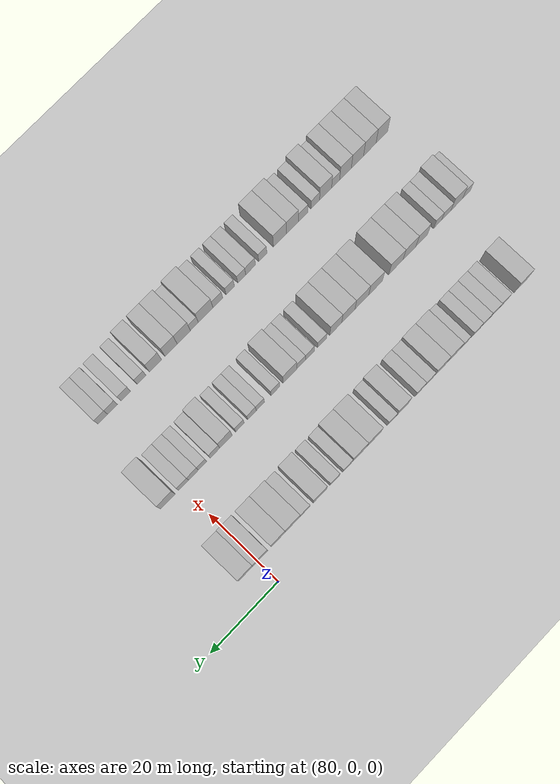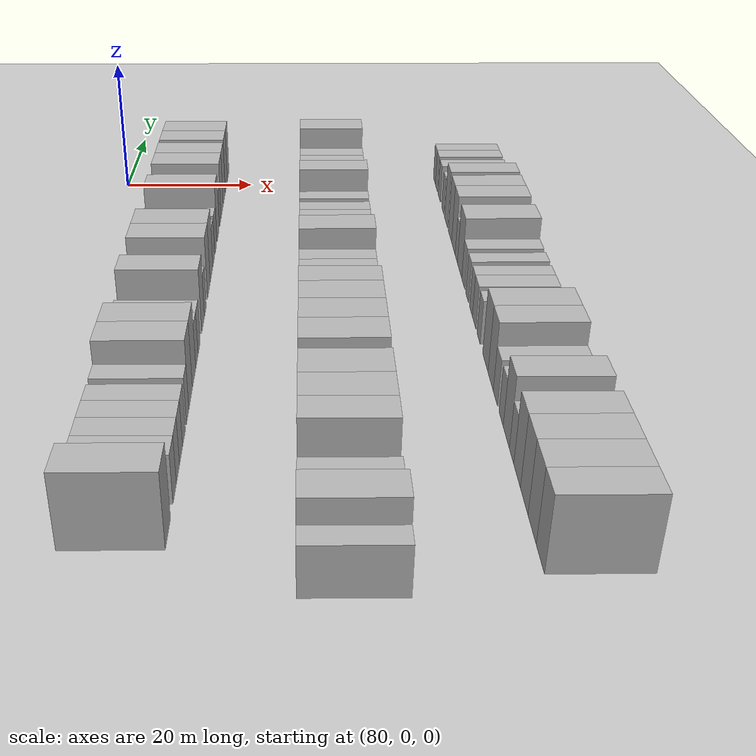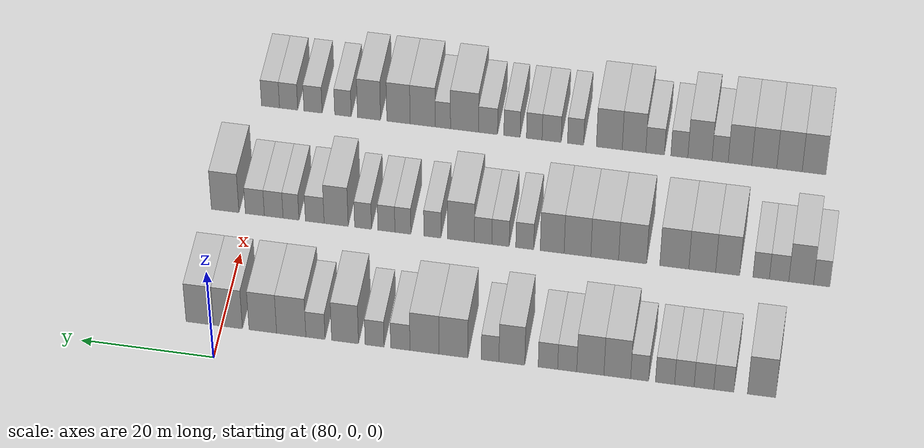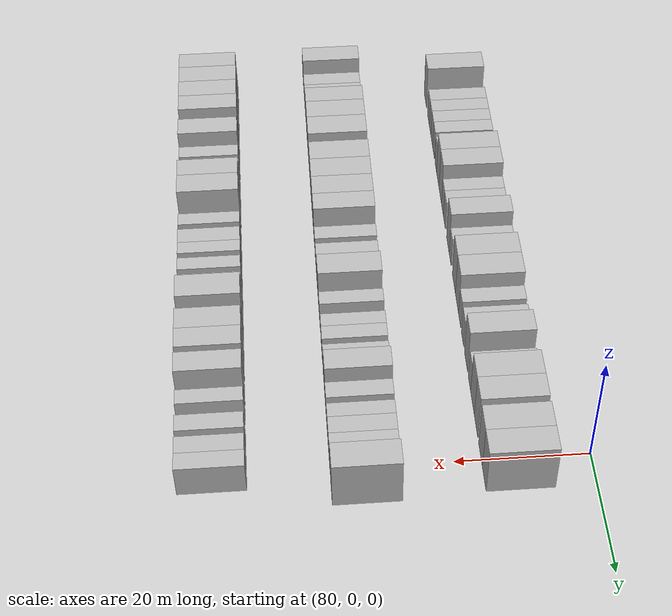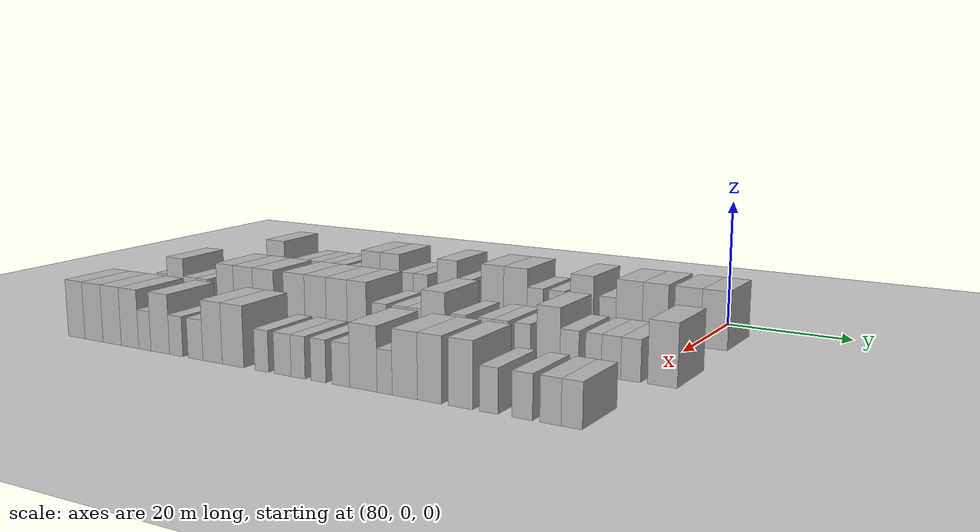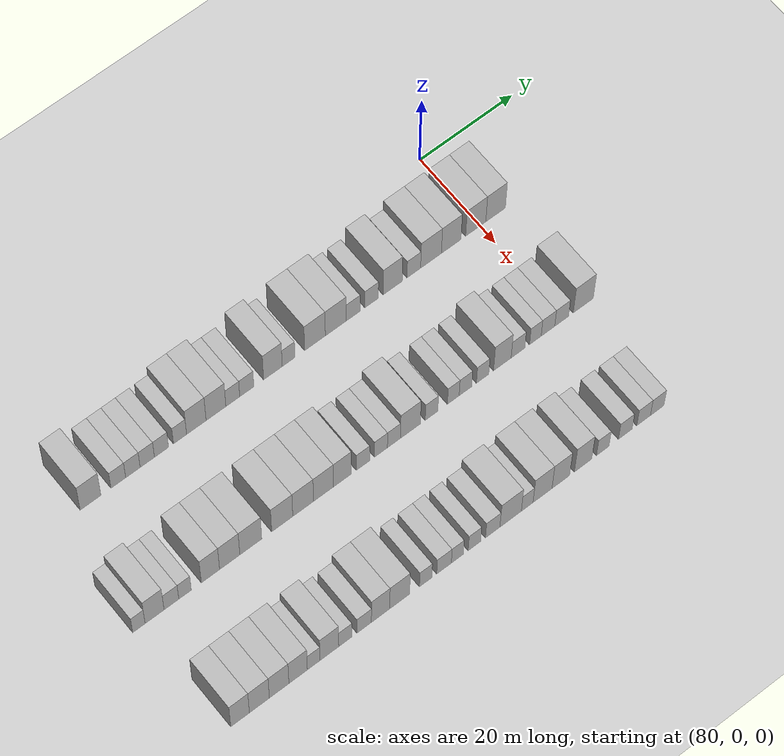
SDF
<sdf version="1.6">
 <world name="default">
  <include>
   <name>ground_plane_2</name>
   <uri>model://HANNAS_ground_plane</uri>
   <pose>100 0 0  0 0 0</pose>
  </include>
  <model name="building_643">
   <static>1</static>
   <pose>91.0000 -80.6594 0 0.000000 0.000000 0.000000</pose>
   <link name="link">
    <pose>0 0 4.50 0 0 0</pose>
    <collision name="collision"><geometry><box><size>10.0000 4.1538 9.0000</size></box></geometry></collision>
    <visual name="visual">
     <cast_shadows>0</cast_shadows>
     <geometry><box><size>10.0000 4.1538 9.0000</size></box></geometry>
     <material>
      <script>
       <uri>model://HANNAS_wall/materials/scripts</uri>
       <uri>model://HANNAS_wall/materials/textures</uri>
       <name>vrc/HANNAS_wall</name>
      </script>
     </material>
    </visual>
   </link>
  </model>
  <model name="building_644">
   <static>1</static>
   <pose>91.0000 -75.1025 0 0.000000 0.000000 0.000000</pose>
   <link name="link">
    <pose>0 0 3.00 0 0 0</pose>
    <collision name="collision"><geometry><box><size>10.0000 2.9601 6.0000</size></box></geometry></collision>
    <visual name="visual">
     <cast_shadows>0</cast_shadows>
     <geometry><box><size>10.0000 2.9601 6.0000</size></box></geometry>
     <material>
      <script>
       <uri>model://HANNAS_wall/materials/scripts</uri>
       <uri>model://HANNAS_wall/materials/textures</uri>
       <name>vrc/HANNAS_wall</name>
      </script>
     </material>
    </visual>
   </link>
  </model>
  <model name="building_645">
   <static>1</static>
   <pose>91.0000 -72.1695 0 0.000000 0.000000 0.000000</pose>
   <link name="link">
    <pose>0 0 3.00 0 0 0</pose>
    <collision name="collision"><geometry><box><size>10.0000 2.9058 6.0000</size></box></geometry></collision>
    <visual name="visual">
     <cast_shadows>0</cast_shadows>
     <geometry><box><size>10.0000 2.9058 6.0000</size></box></geometry>
     <material>
      <script>
       <uri>model://HANNAS_wall/materials/scripts</uri>
       <uri>model://HANNAS_wall/materials/textures</uri>
       <name>vrc/HANNAS_wall</name>
      </script>
     </material>
    </visual>
   </link>
  </model>
  <model name="building_646">
   <static>1</static>
   <pose>91.0000 -69.2761 0 0.000000 0.000000 0.000000</pose>
   <link name="link">
    <pose>0 0 3.00 0 0 0</pose>
    <collision name="collision"><geometry><box><size>10.0000 2.8811 6.0000</size></box></geometry></collision>
    <visual name="visual">
     <cast_shadows>0</cast_shadows>
     <geometry><box><size>10.0000 2.8811 6.0000</size></box></geometry>
     <material>
      <script>
       <uri>model://HANNAS_wall/materials/scripts</uri>
       <uri>model://HANNAS_wall/materials/textures</uri>
       <name>vrc/HANNAS_wall</name>
      </script>
     </material>
    </visual>
   </link>
  </model>
  <model name="building_647">
   <static>1</static>
   <pose>91.0000 -66.4139 0 0.000000 0.000000 0.000000</pose>
   <link name="link">
    <pose>0 0 3.00 0 0 0</pose>
    <collision name="collision"><geometry><box><size>10.0000 2.8433 6.0000</size></box></geometry></collision>
    <visual name="visual">
     <cast_shadows>0</cast_shadows>
     <geometry><box><size>10.0000 2.8433 6.0000</size></box></geometry>
     <material>
      <script>
       <uri>model://HANNAS_wall/materials/scripts</uri>
       <uri>model://HANNAS_wall/materials/textures</uri>
       <name>vrc/HANNAS_wall</name>
      </script>
     </material>
    </visual>
   </link>
  </model>
  <model name="building_648">
   <static>1</static>
   <pose>91.0000 -62.6570 0 0.000000 0.000000 0.000000</pose>
   <link name="link">
    <pose>0 0 3.00 0 0 0</pose>
    <collision name="collision"><geometry><box><size>10.0000 2.6704 6.0000</size></box></geometry></collision>
    <visual name="visual">
     <cast_shadows>0</cast_shadows>
     <geometry><box><size>10.0000 2.6704 6.0000</size></box></geometry>
     <material>
      <script>
       <uri>model://HANNAS_wall/materials/scripts</uri>
       <uri>model://HANNAS_wall/materials/textures</uri>
       <name>vrc/HANNAS_wall</name>
      </script>
     </material>
    </visual>
   </link>
  </model>
  <model name="building_649">
   <static>1</static>
   <pose>91.0000 -59.3383 0 0.000000 0.000000 0.000000</pose>
   <link name="link">
    <pose>0 0 4.50 0 0 0</pose>
    <collision name="collision"><geometry><box><size>10.0000 3.9670 9.0000</size></box></geometry></collision>
    <visual name="visual">
     <cast_shadows>0</cast_shadows>
     <geometry><box><size>10.0000 3.9670 9.0000</size></box></geometry>
     <material>
      <script>
       <uri>model://HANNAS_wall/materials/scripts</uri>
       <uri>model://HANNAS_wall/materials/textures</uri>
       <name>vrc/HANNAS_wall</name>
      </script>
     </material>
    </visual>
   </link>
  </model>
  <model name="building_650">
   <static>1</static>
   <pose>91.0000 -55.3358 0 0.000000 0.000000 0.000000</pose>
   <link name="link">
    <pose>0 0 4.50 0 0 0</pose>
    <collision name="collision"><geometry><box><size>10.0000 4.0381 9.0000</size></box></geometry></collision>
    <visual name="visual">
     <cast_shadows>0</cast_shadows>
     <geometry><box><size>10.0000 4.0381 9.0000</size></box></geometry>
     <material>
      <script>
       <uri>model://HANNAS_wall/materials/scripts</uri>
       <uri>model://HANNAS_wall/materials/textures</uri>
       <name>vrc/HANNAS_wall</name>
      </script>
     </material>
    </visual>
   </link>
  </model>
  <model name="building_651">
   <static>1</static>
   <pose>91.0000 -51.8977 0 0.000000 0.000000 0.000000</pose>
   <link name="link">
    <pose>0 0 3.00 0 0 0</pose>
    <collision name="collision"><geometry><box><size>10.0000 2.8381 6.0000</size></box></geometry></collision>
    <visual name="visual">
     <cast_shadows>0</cast_shadows>
     <geometry><box><size>10.0000 2.8381 6.0000</size></box></geometry>
     <material>
      <script>
       <uri>model://HANNAS_wall/materials/scripts</uri>
       <uri>model://HANNAS_wall/materials/textures</uri>
       <name>vrc/HANNAS_wall</name>
      </script>
     </material>
    </visual>
   </link>
  </model>
  <model name="building_652">
   <static>1</static>
   <pose>91.0000 -49.0293 0 0.000000 0.000000 0.000000</pose>
   <link name="link">
    <pose>0 0 3.00 0 0 0</pose>
    <collision name="collision"><geometry><box><size>10.0000 2.8986 6.0000</size></box></geometry></collision>
    <visual name="visual">
     <cast_shadows>0</cast_shadows>
     <geometry><box><size>10.0000 2.8986 6.0000</size></box></geometry>
     <material>
      <script>
       <uri>model://HANNAS_wall/materials/scripts</uri>
       <uri>model://HANNAS_wall/materials/textures</uri>
       <name>vrc/HANNAS_wall</name>
      </script>
     </material>
    </visual>
   </link>
  </model>
  <model name="building_653">
   <static>1</static>
   <pose>91.0000 -43.6523 0 0.000000 0.000000 0.000000</pose>
   <link name="link">
    <pose>0 0 4.50 0 0 0</pose>
    <collision name="collision"><geometry><box><size>10.0000 3.8554 9.0000</size></box></geometry></collision>
    <visual name="visual">
     <cast_shadows>0</cast_shadows>
     <geometry><box><size>10.0000 3.8554 9.0000</size></box></geometry>
     <material>
      <script>
       <uri>model://HANNAS_wall/materials/scripts</uri>
       <uri>model://HANNAS_wall/materials/textures</uri>
       <name>vrc/HANNAS_wall</name>
      </script>
     </material>
    </visual>
   </link>
  </model>
  <model name="building_654">
   <static>1</static>
   <pose>91.0000 -40.4068 0 0.000000 0.000000 0.000000</pose>
   <link name="link">
    <pose>0 0 3.00 0 0 0</pose>
    <collision name="collision"><geometry><box><size>10.0000 2.6355 6.0000</size></box></geometry></collision>
    <visual name="visual">
     <cast_shadows>0</cast_shadows>
     <geometry><box><size>10.0000 2.6355 6.0000</size></box></geometry>
     <material>
      <script>
       <uri>model://HANNAS_wall/materials/scripts</uri>
       <uri>model://HANNAS_wall/materials/textures</uri>
       <name>vrc/HANNAS_wall</name>
      </script>
     </material>
    </visual>
   </link>
  </model>
  <model name="building_655">
   <static>1</static>
   <pose>91.0000 -34.9305 0 0.000000 0.000000 0.000000</pose>
   <link name="link">
    <pose>0 0 4.50 0 0 0</pose>
    <collision name="collision"><geometry><box><size>10.0000 4.3170 9.0000</size></box></geometry></collision>
    <visual name="visual">
     <cast_shadows>0</cast_shadows>
     <geometry><box><size>10.0000 4.3170 9.0000</size></box></geometry>
     <material>
      <script>
       <uri>model://HANNAS_wall/materials/scripts</uri>
       <uri>model://HANNAS_wall/materials/textures</uri>
       <name>vrc/HANNAS_wall</name>
      </script>
     </material>
    </visual>
   </link>
  </model>
  <model name="building_656">
   <static>1</static>
   <pose>91.0000 -30.5840 0 0.000000 0.000000 0.000000</pose>
   <link name="link">
    <pose>0 0 4.50 0 0 0</pose>
    <collision name="collision"><geometry><box><size>10.0000 4.3761 9.0000</size></box></geometry></collision>
    <visual name="visual">
     <cast_shadows>0</cast_shadows>
     <geometry><box><size>10.0000 4.3761 9.0000</size></box></geometry>
     <material>
      <script>
       <uri>model://HANNAS_wall/materials/scripts</uri>
       <uri>model://HANNAS_wall/materials/textures</uri>
       <name>vrc/HANNAS_wall</name>
      </script>
     </material>
    </visual>
   </link>
  </model>
  <model name="building_657">
   <static>1</static>
   <pose>91.0000 -26.9456 0 0.000000 0.000000 0.000000</pose>
   <link name="link">
    <pose>0 0 3.00 0 0 0</pose>
    <collision name="collision"><geometry><box><size>10.0000 2.9006 6.0000</size></box></geometry></collision>
    <visual name="visual">
     <cast_shadows>0</cast_shadows>
     <geometry><box><size>10.0000 2.9006 6.0000</size></box></geometry>
     <material>
      <script>
       <uri>model://HANNAS_wall/materials/scripts</uri>
       <uri>model://HANNAS_wall/materials/textures</uri>
       <name>vrc/HANNAS_wall</name>
      </script>
     </material>
    </visual>
   </link>
  </model>
  <model name="building_658">
   <static>1</static>
   <pose>91.0000 -23.0763 0 0.000000 0.000000 0.000000</pose>
   <link name="link">
    <pose>0 0 3.00 0 0 0</pose>
    <collision name="collision"><geometry><box><size>10.0000 2.8379 6.0000</size></box></geometry></collision>
    <visual name="visual">
     <cast_shadows>0</cast_shadows>
     <geometry><box><size>10.0000 2.8379 6.0000</size></box></geometry>
     <material>
      <script>
       <uri>model://HANNAS_wall/materials/scripts</uri>
       <uri>model://HANNAS_wall/materials/textures</uri>
       <name>vrc/HANNAS_wall</name>
      </script>
     </material>
    </visual>
   </link>
  </model>
  <model name="building_659">
   <static>1</static>
   <pose>91.0000 -18.6362 0 0.000000 0.000000 0.000000</pose>
   <link name="link">
    <pose>0 0 4.50 0 0 0</pose>
    <collision name="collision"><geometry><box><size>10.0000 4.0423 9.0000</size></box></geometry></collision>
    <visual name="visual">
     <cast_shadows>0</cast_shadows>
     <geometry><box><size>10.0000 4.0423 9.0000</size></box></geometry>
     <material>
      <script>
       <uri>model://HANNAS_wall/materials/scripts</uri>
       <uri>model://HANNAS_wall/materials/textures</uri>
       <name>vrc/HANNAS_wall</name>
      </script>
     </material>
    </visual>
   </link>
  </model>
  <model name="building_660">
   <static>1</static>
   <pose>91.0000 -14.1672 0 0.000000 0.000000 0.000000</pose>
   <link name="link">
    <pose>0 0 3.00 0 0 0</pose>
    <collision name="collision"><geometry><box><size>10.0000 2.8957 6.0000</size></box></geometry></collision>
    <visual name="visual">
     <cast_shadows>0</cast_shadows>
     <geometry><box><size>10.0000 2.8957 6.0000</size></box></geometry>
     <material>
      <script>
       <uri>model://HANNAS_wall/materials/scripts</uri>
       <uri>model://HANNAS_wall/materials/textures</uri>
       <name>vrc/HANNAS_wall</name>
      </script>
     </material>
    </visual>
   </link>
  </model>
  <model name="building_661">
   <static>1</static>
   <pose>91.0000 -10.5054 0 0.000000 0.000000 0.000000</pose>
   <link name="link">
    <pose>0 0 4.50 0 0 0</pose>
    <collision name="collision"><geometry><box><size>10.0000 4.4279 9.0000</size></box></geometry></collision>
    <visual name="visual">
     <cast_shadows>0</cast_shadows>
     <geometry><box><size>10.0000 4.4279 9.0000</size></box></geometry>
     <material>
      <script>
       <uri>model://HANNAS_wall/materials/scripts</uri>
       <uri>model://HANNAS_wall/materials/textures</uri>
       <name>vrc/HANNAS_wall</name>
      </script>
     </material>
    </visual>
   </link>
  </model>
  <model name="building_662">
   <static>1</static>
   <pose>91.0000 -6.2024 0 0.000000 0.000000 0.000000</pose>
   <link name="link">
    <pose>0 0 4.50 0 0 0</pose>
    <collision name="collision"><geometry><box><size>10.0000 4.1783 9.0000</size></box></geometry></collision>
    <visual name="visual">
     <cast_shadows>0</cast_shadows>
     <geometry><box><size>10.0000 4.1783 9.0000</size></box></geometry>
     <material>
      <script>
       <uri>model://HANNAS_wall/materials/scripts</uri>
       <uri>model://HANNAS_wall/materials/textures</uri>
       <name>vrc/HANNAS_wall</name>
      </script>
     </material>
    </visual>
   </link>
  </model>
  <model name="building_663">
   <static>1</static>
   <pose>91.0000 -0.9442 0 0.000000 0.000000 0.000000</pose>
   <link name="link">
    <pose>0 0 4.50 0 0 0</pose>
    <collision name="collision"><geometry><box><size>10.0000 4.3382 9.0000</size></box></geometry></collision>
    <visual name="visual">
     <cast_shadows>0</cast_shadows>
     <geometry><box><size>10.0000 4.3382 9.0000</size></box></geometry>
     <material>
      <script>
       <uri>model://HANNAS_wall/materials/scripts</uri>
       <uri>model://HANNAS_wall/materials/textures</uri>
       <name>vrc/HANNAS_wall</name>
      </script>
     </material>
    </visual>
   </link>
  </model>
  <model name="building_664">
   <static>1</static>
   <pose>91.0000 3.3282 0 0.000000 0.000000 0.000000</pose>
   <link name="link">
    <pose>0 0 4.50 0 0 0</pose>
    <collision name="collision"><geometry><box><size>10.0000 4.2066 9.0000</size></box></geometry></collision>
    <visual name="visual">
     <cast_shadows>0</cast_shadows>
     <geometry><box><size>10.0000 4.2066 9.0000</size></box></geometry>
     <material>
      <script>
       <uri>model://HANNAS_wall/materials/scripts</uri>
       <uri>model://HANNAS_wall/materials/textures</uri>
       <name>vrc/HANNAS_wall</name>
      </script>
     </material>
    </visual>
   </link>
  </model>
  <model name="building_828">
   <static>1</static>
   <pose>113.0000 -87.4031 0 0.000000 0.000000 0.000000</pose>
   <link name="link">
    <pose>0 0 3.00 0 0 0</pose>
    <collision name="collision"><geometry><box><size>10.0000 2.4527 6.0000</size></box></geometry></collision>
    <visual name="visual">
     <cast_shadows>0</cast_shadows>
     <geometry><box><size>10.0000 2.4527 6.0000</size></box></geometry>
     <material>
      <script>
       <uri>model://HANNAS_wall/materials/scripts</uri>
       <uri>model://HANNAS_wall/materials/textures</uri>
       <name>vrc/HANNAS_wall</name>
      </script>
     </material>
    </visual>
   </link>
  </model>
  <model name="building_829">
   <static>1</static>
   <pose>113.0000 -84.3061 0 0.000000 0.000000 0.000000</pose>
   <link name="link">
    <pose>0 0 4.50 0 0 0</pose>
    <collision name="collision"><geometry><box><size>10.0000 3.7411 9.0000</size></box></geometry></collision>
    <visual name="visual">
     <cast_shadows>0</cast_shadows>
     <geometry><box><size>10.0000 3.7411 9.0000</size></box></geometry>
     <material>
      <script>
       <uri>model://HANNAS_wall/materials/scripts</uri>
       <uri>model://HANNAS_wall/materials/textures</uri>
       <name>vrc/HANNAS_wall</name>
      </script>
     </material>
    </visual>
   </link>
  </model>
  <model name="building_830">
   <static>1</static>
   <pose>113.0000 -80.9729 0 0.000000 0.000000 0.000000</pose>
   <link name="link">
    <pose>0 0 3.00 0 0 0</pose>
    <collision name="collision"><geometry><box><size>10.0000 2.9254 6.0000</size></box></geometry></collision>
    <visual name="visual">
     <cast_shadows>0</cast_shadows>
     <geometry><box><size>10.0000 2.9254 6.0000</size></box></geometry>
     <material>
      <script>
       <uri>model://HANNAS_wall/materials/scripts</uri>
       <uri>model://HANNAS_wall/materials/textures</uri>
       <name>vrc/HANNAS_wall</name>
      </script>
     </material>
    </visual>
   </link>
  </model>
  <model name="building_831">
   <static>1</static>
   <pose>113.0000 -78.2652 0 0.000000 0.000000 0.000000</pose>
   <link name="link">
    <pose>0 0 3.00 0 0 0</pose>
    <collision name="collision"><geometry><box><size>10.0000 2.4899 6.0000</size></box></geometry></collision>
    <visual name="visual">
     <cast_shadows>0</cast_shadows>
     <geometry><box><size>10.0000 2.4899 6.0000</size></box></geometry>
     <material>
      <script>
       <uri>model://HANNAS_wall/materials/scripts</uri>
       <uri>model://HANNAS_wall/materials/textures</uri>
       <name>vrc/HANNAS_wall</name>
      </script>
     </material>
    </visual>
   </link>
  </model>
  <model name="building_832">
   <static>1</static>
   <pose>113.0000 -73.1957 0 0.000000 0.000000 0.000000</pose>
   <link name="link">
    <pose>0 0 4.50 0 0 0</pose>
    <collision name="collision"><geometry><box><size>10.0000 3.6491 9.0000</size></box></geometry></collision>
    <visual name="visual">
     <cast_shadows>0</cast_shadows>
     <geometry><box><size>10.0000 3.6491 9.0000</size></box></geometry>
     <material>
      <script>
       <uri>model://HANNAS_wall/materials/scripts</uri>
       <uri>model://HANNAS_wall/materials/textures</uri>
       <name>vrc/HANNAS_wall</name>
      </script>
     </material>
    </visual>
   </link>
  </model>
  <model name="building_833">
   <static>1</static>
   <pose>113.0000 -69.3417 0 0.000000 0.000000 0.000000</pose>
   <link name="link">
    <pose>0 0 4.50 0 0 0</pose>
    <collision name="collision"><geometry><box><size>10.0000 4.0591 9.0000</size></box></geometry></collision>
    <visual name="visual">
     <cast_shadows>0</cast_shadows>
     <geometry><box><size>10.0000 4.0591 9.0000</size></box></geometry>
     <material>
      <script>
       <uri>model://HANNAS_wall/materials/scripts</uri>
       <uri>model://HANNAS_wall/materials/textures</uri>
       <name>vrc/HANNAS_wall</name>
      </script>
     </material>
    </visual>
   </link>
  </model>
  <model name="building_834">
   <static>1</static>
   <pose>113.0000 -65.1055 0 0.000000 0.000000 0.000000</pose>
   <link name="link">
    <pose>0 0 4.50 0 0 0</pose>
    <collision name="collision"><geometry><box><size>10.0000 4.4133 9.0000</size></box></geometry></collision>
    <visual name="visual">
     <cast_shadows>0</cast_shadows>
     <geometry><box><size>10.0000 4.4133 9.0000</size></box></geometry>
     <material>
      <script>
       <uri>model://HANNAS_wall/materials/scripts</uri>
       <uri>model://HANNAS_wall/materials/textures</uri>
       <name>vrc/HANNAS_wall</name>
      </script>
     </material>
    </visual>
   </link>
  </model>
  <model name="building_835">
   <static>1</static>
   <pose>113.0000 -58.7621 0 0.000000 0.000000 0.000000</pose>
   <link name="link">
    <pose>0 0 4.50 0 0 0</pose>
    <collision name="collision"><geometry><box><size>10.0000 4.2735 9.0000</size></box></geometry></collision>
    <visual name="visual">
     <cast_shadows>0</cast_shadows>
     <geometry><box><size>10.0000 4.2735 9.0000</size></box></geometry>
     <material>
      <script>
       <uri>model://HANNAS_wall/materials/scripts</uri>
       <uri>model://HANNAS_wall/materials/textures</uri>
       <name>vrc/HANNAS_wall</name>
      </script>
     </material>
    </visual>
   </link>
  </model>
  <model name="building_836">
   <static>1</static>
   <pose>113.0000 -54.5113 0 0.000000 0.000000 0.000000</pose>
   <link name="link">
    <pose>0 0 4.50 0 0 0</pose>
    <collision name="collision"><geometry><box><size>10.0000 4.2282 9.0000</size></box></geometry></collision>
    <visual name="visual">
     <cast_shadows>0</cast_shadows>
     <geometry><box><size>10.0000 4.2282 9.0000</size></box></geometry>
     <material>
      <script>
       <uri>model://HANNAS_wall/materials/scripts</uri>
       <uri>model://HANNAS_wall/materials/textures</uri>
       <name>vrc/HANNAS_wall</name>
      </script>
     </material>
    </visual>
   </link>
  </model>
  <model name="building_837">
   <static>1</static>
   <pose>113.0000 -50.3546 0 0.000000 0.000000 0.000000</pose>
   <link name="link">
    <pose>0 0 4.50 0 0 0</pose>
    <collision name="collision"><geometry><box><size>10.0000 4.0851 9.0000</size></box></geometry></collision>
    <visual name="visual">
     <cast_shadows>0</cast_shadows>
     <geometry><box><size>10.0000 4.0851 9.0000</size></box></geometry>
     <material>
      <script>
       <uri>model://HANNAS_wall/materials/scripts</uri>
       <uri>model://HANNAS_wall/materials/textures</uri>
       <name>vrc/HANNAS_wall</name>
      </script>
     </material>
    </visual>
   </link>
  </model>
  <model name="building_838">
   <static>1</static>
   <pose>113.0000 -46.4855 0 0.000000 0.000000 0.000000</pose>
   <link name="link">
    <pose>0 0 4.50 0 0 0</pose>
    <collision name="collision"><geometry><box><size>10.0000 3.6531 9.0000</size></box></geometry></collision>
    <visual name="visual">
     <cast_shadows>0</cast_shadows>
     <geometry><box><size>10.0000 3.6531 9.0000</size></box></geometry>
     <material>
      <script>
       <uri>model://HANNAS_wall/materials/scripts</uri>
       <uri>model://HANNAS_wall/materials/textures</uri>
       <name>vrc/HANNAS_wall</name>
      </script>
     </material>
    </visual>
   </link>
  </model>
  <model name="building_839">
   <static>1</static>
   <pose>113.0000 -42.2864 0 0.000000 0.000000 0.000000</pose>
   <link name="link">
    <pose>0 0 3.00 0 0 0</pose>
    <collision name="collision"><geometry><box><size>10.0000 2.7451 6.0000</size></box></geometry></collision>
    <visual name="visual">
     <cast_shadows>0</cast_shadows>
     <geometry><box><size>10.0000 2.7451 6.0000</size></box></geometry>
     <material>
      <script>
       <uri>model://HANNAS_wall/materials/scripts</uri>
       <uri>model://HANNAS_wall/materials/textures</uri>
       <name>vrc/HANNAS_wall</name>
      </script>
     </material>
    </visual>
   </link>
  </model>
  <model name="building_840">
   <static>1</static>
   <pose>113.0000 -38.5780 0 0.000000 0.000000 0.000000</pose>
   <link name="link">
    <pose>0 0 3.00 0 0 0</pose>
    <collision name="collision"><geometry><box><size>10.0000 2.6717 6.0000</size></box></geometry></collision>
    <visual name="visual">
     <cast_shadows>0</cast_shadows>
     <geometry><box><size>10.0000 2.6717 6.0000</size></box></geometry>
     <material>
      <script>
       <uri>model://HANNAS_wall/materials/scripts</uri>
       <uri>model://HANNAS_wall/materials/textures</uri>
       <name>vrc/HANNAS_wall</name>
      </script>
     </material>
    </visual>
   </link>
  </model>
  <model name="building_841">
   <static>1</static>
   <pose>113.0000 -35.9037 0 0.000000 0.000000 0.000000</pose>
   <link name="link">
    <pose>0 0 3.00 0 0 0</pose>
    <collision name="collision"><geometry><box><size>10.0000 2.6768 6.0000</size></box></geometry></collision>
    <visual name="visual">
     <cast_shadows>0</cast_shadows>
     <geometry><box><size>10.0000 2.6768 6.0000</size></box></geometry>
     <material>
      <script>
       <uri>model://HANNAS_wall/materials/scripts</uri>
       <uri>model://HANNAS_wall/materials/textures</uri>
       <name>vrc/HANNAS_wall</name>
      </script>
     </material>
    </visual>
   </link>
  </model>
  <model name="building_842">
   <static>1</static>
   <pose>113.0000 -32.4899 0 0.000000 0.000000 0.000000</pose>
   <link name="link">
    <pose>0 0 4.50 0 0 0</pose>
    <collision name="collision"><geometry><box><size>10.0000 4.1509 9.0000</size></box></geometry></collision>
    <visual name="visual">
     <cast_shadows>0</cast_shadows>
     <geometry><box><size>10.0000 4.1509 9.0000</size></box></geometry>
     <material>
      <script>
       <uri>model://HANNAS_wall/materials/scripts</uri>
       <uri>model://HANNAS_wall/materials/textures</uri>
       <name>vrc/HANNAS_wall</name>
      </script>
     </material>
    </visual>
   </link>
  </model>
  <model name="building_843">
   <static>1</static>
   <pose>113.0000 -28.0968 0 0.000000 0.000000 0.000000</pose>
   <link name="link">
    <pose>0 0 3.00 0 0 0</pose>
    <collision name="collision"><geometry><box><size>10.0000 2.6353 6.0000</size></box></geometry></collision>
    <visual name="visual">
     <cast_shadows>0</cast_shadows>
     <geometry><box><size>10.0000 2.6353 6.0000</size></box></geometry>
     <material>
      <script>
       <uri>model://HANNAS_wall/materials/scripts</uri>
       <uri>model://HANNAS_wall/materials/textures</uri>
       <name>vrc/HANNAS_wall</name>
      </script>
     </material>
    </visual>
   </link>
  </model>
  <model name="building_844">
   <static>1</static>
   <pose>113.0000 -23.5481 0 0.000000 0.000000 0.000000</pose>
   <link name="link">
    <pose>0 0 3.00 0 0 0</pose>
    <collision name="collision"><geometry><box><size>10.0000 2.4622 6.0000</size></box></geometry></collision>
    <visual name="visual">
     <cast_shadows>0</cast_shadows>
     <geometry><box><size>10.0000 2.4622 6.0000</size></box></geometry>
     <material>
      <script>
       <uri>model://HANNAS_wall/materials/scripts</uri>
       <uri>model://HANNAS_wall/materials/textures</uri>
       <name>vrc/HANNAS_wall</name>
      </script>
     </material>
    </visual>
   </link>
  </model>
  <model name="building_845">
   <static>1</static>
   <pose>113.0000 -21.0058 0 0.000000 0.000000 0.000000</pose>
   <link name="link">
    <pose>0 0 3.00 0 0 0</pose>
    <collision name="collision"><geometry><box><size>10.0000 2.6223 6.0000</size></box></geometry></collision>
    <visual name="visual">
     <cast_shadows>0</cast_shadows>
     <geometry><box><size>10.0000 2.6223 6.0000</size></box></geometry>
     <material>
      <script>
       <uri>model://HANNAS_wall/materials/scripts</uri>
       <uri>model://HANNAS_wall/materials/textures</uri>
       <name>vrc/HANNAS_wall</name>
      </script>
     </material>
    </visual>
   </link>
  </model>
  <model name="building_846">
   <static>1</static>
   <pose>113.0000 -17.3935 0 0.000000 0.000000 0.000000</pose>
   <link name="link">
    <pose>0 0 3.00 0 0 0</pose>
    <collision name="collision"><geometry><box><size>10.0000 2.6022 6.0000</size></box></geometry></collision>
    <visual name="visual">
     <cast_shadows>0</cast_shadows>
     <geometry><box><size>10.0000 2.6022 6.0000</size></box></geometry>
     <material>
      <script>
       <uri>model://HANNAS_wall/materials/scripts</uri>
       <uri>model://HANNAS_wall/materials/textures</uri>
       <name>vrc/HANNAS_wall</name>
      </script>
     </material>
    </visual>
   </link>
  </model>
  <model name="building_847">
   <static>1</static>
   <pose>113.0000 -13.2279 0 0.000000 0.000000 0.000000</pose>
   <link name="link">
    <pose>0 0 4.50 0 0 0</pose>
    <collision name="collision"><geometry><box><size>10.0000 3.7290 9.0000</size></box></geometry></collision>
    <visual name="visual">
     <cast_shadows>0</cast_shadows>
     <geometry><box><size>10.0000 3.7290 9.0000</size></box></geometry>
     <material>
      <script>
       <uri>model://HANNAS_wall/materials/scripts</uri>
       <uri>model://HANNAS_wall/materials/textures</uri>
       <name>vrc/HANNAS_wall</name>
      </script>
     </material>
    </visual>
   </link>
  </model>
  <model name="building_848">
   <static>1</static>
   <pose>113.0000 -9.9126 0 0.000000 0.000000 0.000000</pose>
   <link name="link">
    <pose>0 0 3.00 0 0 0</pose>
    <collision name="collision"><geometry><box><size>10.0000 2.9016 6.0000</size></box></geometry></collision>
    <visual name="visual">
     <cast_shadows>0</cast_shadows>
     <geometry><box><size>10.0000 2.9016 6.0000</size></box></geometry>
     <material>
      <script>
       <uri>model://HANNAS_wall/materials/scripts</uri>
       <uri>model://HANNAS_wall/materials/textures</uri>
       <name>vrc/HANNAS_wall</name>
      </script>
     </material>
    </visual>
   </link>
  </model>
  <model name="building_849">
   <static>1</static>
   <pose>113.0000 -6.2263 0 0.000000 0.000000 0.000000</pose>
   <link name="link">
    <pose>0 0 3.00 0 0 0</pose>
    <collision name="collision"><geometry><box><size>10.0000 2.4711 6.0000</size></box></geometry></collision>
    <visual name="visual">
     <cast_shadows>0</cast_shadows>
     <geometry><box><size>10.0000 2.4711 6.0000</size></box></geometry>
     <material>
      <script>
       <uri>model://HANNAS_wall/materials/scripts</uri>
       <uri>model://HANNAS_wall/materials/textures</uri>
       <name>vrc/HANNAS_wall</name>
      </script>
     </material>
    </visual>
   </link>
  </model>
  <model name="building_850">
   <static>1</static>
   <pose>113.0000 -3.5380 0 0.000000 0.000000 0.000000</pose>
   <link name="link">
    <pose>0 0 3.00 0 0 0</pose>
    <collision name="collision"><geometry><box><size>10.0000 2.9054 6.0000</size></box></geometry></collision>
    <visual name="visual">
     <cast_shadows>0</cast_shadows>
     <geometry><box><size>10.0000 2.9054 6.0000</size></box></geometry>
     <material>
      <script>
       <uri>model://HANNAS_wall/materials/scripts</uri>
       <uri>model://HANNAS_wall/materials/textures</uri>
       <name>vrc/HANNAS_wall</name>
      </script>
     </material>
    </visual>
   </link>
  </model>
  <model name="building_851">
   <static>1</static>
   <pose>113.0000 -0.6074 0 0.000000 0.000000 0.000000</pose>
   <link name="link">
    <pose>0 0 3.00 0 0 0</pose>
    <collision name="collision"><geometry><box><size>10.0000 2.9560 6.0000</size></box></geometry></collision>
    <visual name="visual">
     <cast_shadows>0</cast_shadows>
     <geometry><box><size>10.0000 2.9560 6.0000</size></box></geometry>
     <material>
      <script>
       <uri>model://HANNAS_wall/materials/scripts</uri>
       <uri>model://HANNAS_wall/materials/textures</uri>
       <name>vrc/HANNAS_wall</name>
      </script>
     </material>
    </visual>
   </link>
  </model>
  <model name="building_852">
   <static>1</static>
   <pose>113.0000 4.0161 0 0.000000 0.000000 0.000000</pose>
   <link name="link">
    <pose>0 0 4.50 0 0 0</pose>
    <collision name="collision"><geometry><box><size>10.0000 4.2910 9.0000</size></box></geometry></collision>
    <visual name="visual">
     <cast_shadows>0</cast_shadows>
     <geometry><box><size>10.0000 4.2910 9.0000</size></box></geometry>
     <material>
      <script>
       <uri>model://HANNAS_wall/materials/scripts</uri>
       <uri>model://HANNAS_wall/materials/textures</uri>
       <name>vrc/HANNAS_wall</name>
      </script>
     </material>
    </visual>
   </link>
  </model>
  <model name="building_1021">
   <static>1</static>
   <pose>135.0000 -84.1237 0 0.000000 0.000000 0.000000</pose>
   <link name="link">
    <pose>0 0 4.50 0 0 0</pose>
    <collision name="collision"><geometry><box><size>10.0000 3.6751 9.0000</size></box></geometry></collision>
    <visual name="visual">
     <cast_shadows>0</cast_shadows>
     <geometry><box><size>10.0000 3.6751 9.0000</size></box></geometry>
     <material>
      <script>
       <uri>model://HANNAS_wall/materials/scripts</uri>
       <uri>model://HANNAS_wall/materials/textures</uri>
       <name>vrc/HANNAS_wall</name>
      </script>
     </material>
    </visual>
   </link>
  </model>
  <model name="building_1022">
   <static>1</static>
   <pose>135.0000 -80.3172 0 0.000000 0.000000 0.000000</pose>
   <link name="link">
    <pose>0 0 4.50 0 0 0</pose>
    <collision name="collision"><geometry><box><size>10.0000 3.9379 9.0000</size></box></geometry></collision>
    <visual name="visual">
     <cast_shadows>0</cast_shadows>
     <geometry><box><size>10.0000 3.9379 9.0000</size></box></geometry>
     <material>
      <script>
       <uri>model://HANNAS_wall/materials/scripts</uri>
       <uri>model://HANNAS_wall/materials/textures</uri>
       <name>vrc/HANNAS_wall</name>
      </script>
     </material>
    </visual>
   </link>
  </model>
  <model name="building_1023">
   <static>1</static>
   <pose>135.0000 -76.4098 0 0.000000 0.000000 0.000000</pose>
   <link name="link">
    <pose>0 0 4.50 0 0 0</pose>
    <collision name="collision"><geometry><box><size>10.0000 3.8768 9.0000</size></box></geometry></collision>
    <visual name="visual">
     <cast_shadows>0</cast_shadows>
     <geometry><box><size>10.0000 3.8768 9.0000</size></box></geometry>
     <material>
      <script>
       <uri>model://HANNAS_wall/materials/scripts</uri>
       <uri>model://HANNAS_wall/materials/textures</uri>
       <name>vrc/HANNAS_wall</name>
      </script>
     </material>
    </visual>
   </link>
  </model>
  <model name="building_1024">
   <static>1</static>
   <pose>135.0000 -72.6410 0 0.000000 0.000000 0.000000</pose>
   <link name="link">
    <pose>0 0 4.50 0 0 0</pose>
    <collision name="collision"><geometry><box><size>10.0000 3.6609 9.0000</size></box></geometry></collision>
    <visual name="visual">
     <cast_shadows>0</cast_shadows>
     <geometry><box><size>10.0000 3.6609 9.0000</size></box></geometry>
     <material>
      <script>
       <uri>model://HANNAS_wall/materials/scripts</uri>
       <uri>model://HANNAS_wall/materials/textures</uri>
       <name>vrc/HANNAS_wall</name>
      </script>
     </material>
    </visual>
   </link>
  </model>
  <model name="building_1025">
   <static>1</static>
   <pose>135.0000 -69.5547 0 0.000000 0.000000 0.000000</pose>
   <link name="link">
    <pose>0 0 3.00 0 0 0</pose>
    <collision name="collision"><geometry><box><size>10.0000 2.5118 6.0000</size></box></geometry></collision>
    <visual name="visual">
     <cast_shadows>0</cast_shadows>
     <geometry><box><size>10.0000 2.5118 6.0000</size></box></geometry>
     <material>
      <script>
       <uri>model://HANNAS_wall/materials/scripts</uri>
       <uri>model://HANNAS_wall/materials/textures</uri>
       <name>vrc/HANNAS_wall</name>
      </script>
     </material>
    </visual>
   </link>
  </model>
  <model name="building_1026">
   <static>1</static>
   <pose>135.0000 -66.4175 0 0.000000 0.000000 0.000000</pose>
   <link name="link">
    <pose>0 0 4.50 0 0 0</pose>
    <collision name="collision"><geometry><box><size>10.0000 3.7625 9.0000</size></box></geometry></collision>
    <visual name="visual">
     <cast_shadows>0</cast_shadows>
     <geometry><box><size>10.0000 3.7625 9.0000</size></box></geometry>
     <material>
      <script>
       <uri>model://HANNAS_wall/materials/scripts</uri>
       <uri>model://HANNAS_wall/materials/textures</uri>
       <name>vrc/HANNAS_wall</name>
      </script>
     </material>
    </visual>
   </link>
  </model>
  <model name="building_1027">
   <static>1</static>
   <pose>135.0000 -63.2101 0 0.000000 0.000000 0.000000</pose>
   <link name="link">
    <pose>0 0 3.00 0 0 0</pose>
    <collision name="collision"><geometry><box><size>10.0000 2.6523 6.0000</size></box></geometry></collision>
    <visual name="visual">
     <cast_shadows>0</cast_shadows>
     <geometry><box><size>10.0000 2.6523 6.0000</size></box></geometry>
     <material>
      <script>
       <uri>model://HANNAS_wall/materials/scripts</uri>
       <uri>model://HANNAS_wall/materials/textures</uri>
       <name>vrc/HANNAS_wall</name>
      </script>
     </material>
    </visual>
   </link>
  </model>
  <model name="building_1028">
   <static>1</static>
   <pose>135.0000 -59.4308 0 0.000000 0.000000 0.000000</pose>
   <link name="link">
    <pose>0 0 3.00 0 0 0</pose>
    <collision name="collision"><geometry><box><size>10.0000 2.9064 6.0000</size></box></geometry></collision>
    <visual name="visual">
     <cast_shadows>0</cast_shadows>
     <geometry><box><size>10.0000 2.9064 6.0000</size></box></geometry>
     <material>
      <script>
       <uri>model://HANNAS_wall/materials/scripts</uri>
       <uri>model://HANNAS_wall/materials/textures</uri>
       <name>vrc/HANNAS_wall</name>
      </script>
     </material>
    </visual>
   </link>
  </model>
  <model name="building_1029">
   <static>1</static>
   <pose>135.0000 -56.1352 0 0.000000 0.000000 0.000000</pose>
   <link name="link">
    <pose>0 0 4.50 0 0 0</pose>
    <collision name="collision"><geometry><box><size>10.0000 3.6849 9.0000</size></box></geometry></collision>
    <visual name="visual">
     <cast_shadows>0</cast_shadows>
     <geometry><box><size>10.0000 3.6849 9.0000</size></box></geometry>
     <material>
      <script>
       <uri>model://HANNAS_wall/materials/scripts</uri>
       <uri>model://HANNAS_wall/materials/textures</uri>
       <name>vrc/HANNAS_wall</name>
      </script>
     </material>
    </visual>
   </link>
  </model>
  <model name="building_1030">
   <static>1</static>
   <pose>135.0000 -52.2681 0 0.000000 0.000000 0.000000</pose>
   <link name="link">
    <pose>0 0 4.50 0 0 0</pose>
    <collision name="collision"><geometry><box><size>10.0000 4.0492 9.0000</size></box></geometry></collision>
    <visual name="visual">
     <cast_shadows>0</cast_shadows>
     <geometry><box><size>10.0000 4.0492 9.0000</size></box></geometry>
     <material>
      <script>
       <uri>model://HANNAS_wall/materials/scripts</uri>
       <uri>model://HANNAS_wall/materials/textures</uri>
       <name>vrc/HANNAS_wall</name>
      </script>
     </material>
    </visual>
   </link>
  </model>
  <model name="building_1031">
   <static>1</static>
   <pose>135.0000 -46.9815 0 0.000000 0.000000 0.000000</pose>
   <link name="link">
    <pose>0 0 3.00 0 0 0</pose>
    <collision name="collision"><geometry><box><size>10.0000 2.5240 6.0000</size></box></geometry></collision>
    <visual name="visual">
     <cast_shadows>0</cast_shadows>
     <geometry><box><size>10.0000 2.5240 6.0000</size></box></geometry>
     <material>
      <script>
       <uri>model://HANNAS_wall/materials/scripts</uri>
       <uri>model://HANNAS_wall/materials/textures</uri>
       <name>vrc/HANNAS_wall</name>
      </script>
     </material>
    </visual>
   </link>
  </model>
  <model name="building_1032">
   <static>1</static>
   <pose>135.0000 -43.2244 0 0.000000 0.000000 0.000000</pose>
   <link name="link">
    <pose>0 0 3.00 0 0 0</pose>
    <collision name="collision"><geometry><box><size>10.0000 2.9902 6.0000</size></box></geometry></collision>
    <visual name="visual">
     <cast_shadows>0</cast_shadows>
     <geometry><box><size>10.0000 2.9902 6.0000</size></box></geometry>
     <material>
      <script>
       <uri>model://HANNAS_wall/materials/scripts</uri>
       <uri>model://HANNAS_wall/materials/textures</uri>
       <name>vrc/HANNAS_wall</name>
      </script>
     </material>
    </visual>
   </link>
  </model>
  <model name="building_1033">
   <static>1</static>
   <pose>135.0000 -40.5029 0 0.000000 0.000000 0.000000</pose>
   <link name="link">
    <pose>0 0 3.00 0 0 0</pose>
    <collision name="collision"><geometry><box><size>10.0000 2.4528 6.0000</size></box></geometry></collision>
    <visual name="visual">
     <cast_shadows>0</cast_shadows>
     <geometry><box><size>10.0000 2.4528 6.0000</size></box></geometry>
     <material>
      <script>
       <uri>model://HANNAS_wall/materials/scripts</uri>
       <uri>model://HANNAS_wall/materials/textures</uri>
       <name>vrc/HANNAS_wall</name>
      </script>
     </material>
    </visual>
   </link>
  </model>
  <model name="building_1034">
   <static>1</static>
   <pose>135.0000 -36.9973 0 0.000000 0.000000 0.000000</pose>
   <link name="link">
    <pose>0 0 3.00 0 0 0</pose>
    <collision name="collision"><geometry><box><size>10.0000 2.5585 6.0000</size></box></geometry></collision>
    <visual name="visual">
     <cast_shadows>0</cast_shadows>
     <geometry><box><size>10.0000 2.5585 6.0000</size></box></geometry>
     <material>
      <script>
       <uri>model://HANNAS_wall/materials/scripts</uri>
       <uri>model://HANNAS_wall/materials/textures</uri>
       <name>vrc/HANNAS_wall</name>
      </script>
     </material>
    </visual>
   </link>
  </model>
  <model name="building_1035">
   <static>1</static>
   <pose>135.0000 -33.2284 0 0.000000 0.000000 0.000000</pose>
   <link name="link">
    <pose>0 0 3.00 0 0 0</pose>
    <collision name="collision"><geometry><box><size>10.0000 2.9793 6.0000</size></box></geometry></collision>
    <visual name="visual">
     <cast_shadows>0</cast_shadows>
     <geometry><box><size>10.0000 2.9793 6.0000</size></box></geometry>
     <material>
      <script>
       <uri>model://HANNAS_wall/materials/scripts</uri>
       <uri>model://HANNAS_wall/materials/textures</uri>
       <name>vrc/HANNAS_wall</name>
      </script>
     </material>
    </visual>
   </link>
  </model>
  <model name="building_1036">
   <static>1</static>
   <pose>135.0000 -29.5145 0 0.000000 0.000000 0.000000</pose>
   <link name="link">
    <pose>0 0 4.50 0 0 0</pose>
    <collision name="collision"><geometry><box><size>10.0000 4.4484 9.0000</size></box></geometry></collision>
    <visual name="visual">
     <cast_shadows>0</cast_shadows>
     <geometry><box><size>10.0000 4.4484 9.0000</size></box></geometry>
     <material>
      <script>
       <uri>model://HANNAS_wall/materials/scripts</uri>
       <uri>model://HANNAS_wall/materials/textures</uri>
       <name>vrc/HANNAS_wall</name>
      </script>
     </material>
    </visual>
   </link>
  </model>
  <model name="building_1037">
   <static>1</static>
   <pose>135.0000 -26.0783 0 0.000000 0.000000 0.000000</pose>
   <link name="link">
    <pose>0 0 3.00 0 0 0</pose>
    <collision name="collision"><geometry><box><size>10.0000 2.4240 6.0000</size></box></geometry></collision>
    <visual name="visual">
     <cast_shadows>0</cast_shadows>
     <geometry><box><size>10.0000 2.4240 6.0000</size></box></geometry>
     <material>
      <script>
       <uri>model://HANNAS_wall/materials/scripts</uri>
       <uri>model://HANNAS_wall/materials/textures</uri>
       <name>vrc/HANNAS_wall</name>
      </script>
     </material>
    </visual>
   </link>
  </model>
  <model name="building_1038">
   <static>1</static>
   <pose>135.0000 -22.8855 0 0.000000 0.000000 0.000000</pose>
   <link name="link">
    <pose>0 0 4.50 0 0 0</pose>
    <collision name="collision"><geometry><box><size>10.0000 3.9616 9.0000</size></box></geometry></collision>
    <visual name="visual">
     <cast_shadows>0</cast_shadows>
     <geometry><box><size>10.0000 3.9616 9.0000</size></box></geometry>
     <material>
      <script>
       <uri>model://HANNAS_wall/materials/scripts</uri>
       <uri>model://HANNAS_wall/materials/textures</uri>
       <name>vrc/HANNAS_wall</name>
      </script>
     </material>
    </visual>
   </link>
  </model>
  <model name="building_1039">
   <static>1</static>
   <pose>135.0000 -19.0629 0 0.000000 0.000000 0.000000</pose>
   <link name="link">
    <pose>0 0 4.50 0 0 0</pose>
    <collision name="collision"><geometry><box><size>10.0000 3.6837 9.0000</size></box></geometry></collision>
    <visual name="visual">
     <cast_shadows>0</cast_shadows>
     <geometry><box><size>10.0000 3.6837 9.0000</size></box></geometry>
     <material>
      <script>
       <uri>model://HANNAS_wall/materials/scripts</uri>
       <uri>model://HANNAS_wall/materials/textures</uri>
       <name>vrc/HANNAS_wall</name>
      </script>
     </material>
    </visual>
   </link>
  </model>
  <model name="building_1040">
   <static>1</static>
   <pose>135.0000 -14.3957 0 0.000000 0.000000 0.000000</pose>
   <link name="link">
    <pose>0 0 4.50 0 0 0</pose>
    <collision name="collision"><geometry><box><size>10.0000 3.6507 9.0000</size></box></geometry></collision>
    <visual name="visual">
     <cast_shadows>0</cast_shadows>
     <geometry><box><size>10.0000 3.6507 9.0000</size></box></geometry>
     <material>
      <script>
       <uri>model://HANNAS_wall/materials/scripts</uri>
       <uri>model://HANNAS_wall/materials/textures</uri>
       <name>vrc/HANNAS_wall</name>
      </script>
     </material>
    </visual>
   </link>
  </model>
  <model name="building_1041">
   <static>1</static>
   <pose>135.0000 -10.2552 0 0.000000 0.000000 0.000000</pose>
   <link name="link">
    <pose>0 0 3.00 0 0 0</pose>
    <collision name="collision"><geometry><box><size>10.0000 2.6301 6.0000</size></box></geometry></collision>
    <visual name="visual">
     <cast_shadows>0</cast_shadows>
     <geometry><box><size>10.0000 2.6301 6.0000</size></box></geometry>
     <material>
      <script>
       <uri>model://HANNAS_wall/materials/scripts</uri>
       <uri>model://HANNAS_wall/materials/textures</uri>
       <name>vrc/HANNAS_wall</name>
      </script>
     </material>
    </visual>
   </link>
  </model>
  <model name="building_1042">
   <static>1</static>
   <pose>135.0000 -5.4947 0 0.000000 0.000000 0.000000</pose>
   <link name="link">
    <pose>0 0 3.00 0 0 0</pose>
    <collision name="collision"><geometry><box><size>10.0000 2.8909 6.0000</size></box></geometry></collision>
    <visual name="visual">
     <cast_shadows>0</cast_shadows>
     <geometry><box><size>10.0000 2.8909 6.0000</size></box></geometry>
     <material>
      <script>
       <uri>model://HANNAS_wall/materials/scripts</uri>
       <uri>model://HANNAS_wall/materials/textures</uri>
       <name>vrc/HANNAS_wall</name>
      </script>
     </material>
    </visual>
   </link>
  </model>
  <model name="building_1043">
   <static>1</static>
   <pose>135.0000 -1.5970 0 0.000000 0.000000 0.000000</pose>
   <link name="link">
    <pose>0 0 3.00 0 0 0</pose>
    <collision name="collision"><geometry><box><size>10.0000 2.9045 6.0000</size></box></geometry></collision>
    <visual name="visual">
     <cast_shadows>0</cast_shadows>
     <geometry><box><size>10.0000 2.9045 6.0000</size></box></geometry>
     <material>
      <script>
       <uri>model://HANNAS_wall/materials/scripts</uri>
       <uri>model://HANNAS_wall/materials/textures</uri>
       <name>vrc/HANNAS_wall</name>
      </script>
     </material>
    </visual>
   </link>
  </model>
  <model name="building_1044">
   <static>1</static>
   <pose>135.0000 1.2896 0 0.000000 0.000000 0.000000</pose>
   <link name="link">
    <pose>0 0 3.00 0 0 0</pose>
    <collision name="collision"><geometry><box><size>10.0000 2.8687 6.0000</size></box></geometry></collision>
    <visual name="visual">
     <cast_shadows>0</cast_shadows>
     <geometry><box><size>10.0000 2.8687 6.0000</size></box></geometry>
     <material>
      <script>
       <uri>model://HANNAS_wall/materials/scripts</uri>
       <uri>model://HANNAS_wall/materials/textures</uri>
       <name>vrc/HANNAS_wall</name>
      </script>
     </material>
    </visual>
   </link>
  </model>
 </world>
</sdf>
